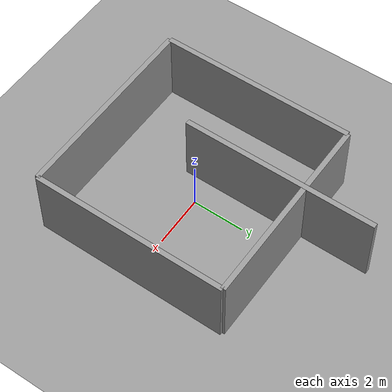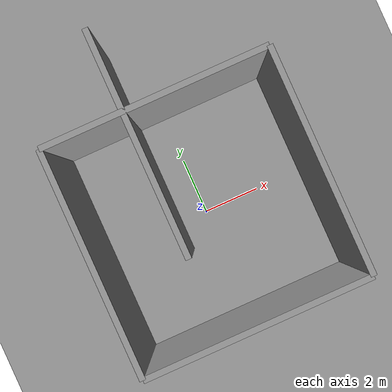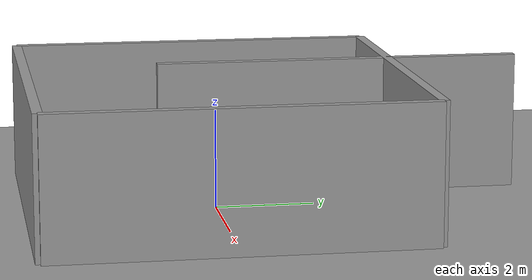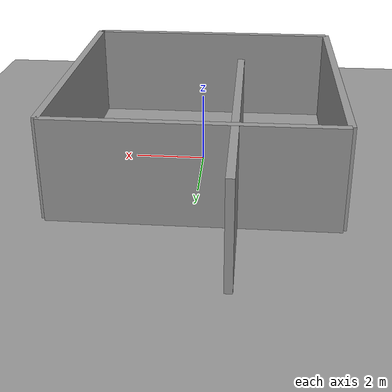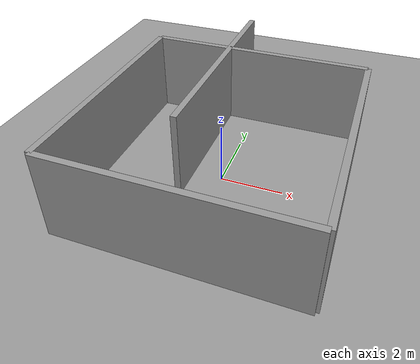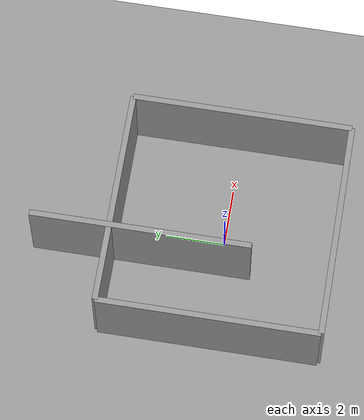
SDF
<sdf version="1.6">
 <world name="default">
  <light name="sun" type="directional">
   <pose>0 0 10 0 -0 0</pose>
   <diffuse>0.8 0.8 0.8 1</diffuse>
   <specular>0.2 0.2 0.2 1</specular>
   <attenuation>
    <range>1000</range>
    <constant>0.9</constant>
    <linear>0.01</linear>
    <quadratic>0.001</quadratic>
   </attenuation>
   <direction>0.5 0.1 -0.9</direction>
  </light>
  <scene><ambient>0.4 0.4 0.4 1</ambient><background>0.7 0.7 0.7 1</background><shadows>1</shadows></scene>
  <physics name="default_physics" default="0" type="ode">
   <max_step_size>0.01</max_step_size>
   <real_time_factor>1</real_time_factor>
   <real_time_update_rate>100</real_time_update_rate>
  </physics>
  <model name="ground_plane_0">
   <static>1</static>
   <link name="link">
    <collision name="collision">
     <geometry><plane><normal>0 0 1</normal><size>100 100</size></plane></geometry>
     <surface><friction><ode><mu>100</mu><mu2>50</mu2></ode></friction></surface>
    </collision>
    <visual name="visual">
     <cast_shadows>0</cast_shadows>
     <geometry><plane><normal>0 0 1</normal><size>100 100</size></plane></geometry>
     <material>
      <script><uri>file://media/materials/scripts/gazebo.material</uri><name>Gazebo/Grey</name></script>
     </material>
    </visual>
    <velocity_decay><linear>0</linear><angular>0</angular></velocity_decay>
   </link>
   <pose>0.5 0 0 0 -0 0</pose>
  </model>
  <gravity>0 0 -9.8</gravity>
  <magnetic_field>6e-06 2.3e-05 -4.2e-05</magnetic_field>
  <atmosphere type="adiabatic"/>
  <audio><device>default</device></audio>
  <spherical_coordinates>
   <surface_model>EARTH_WGS84</surface_model>
   <latitude_deg>0</latitude_deg>
   <longitude_deg>0</longitude_deg>
   <elevation>0</elevation>
   <heading_deg>0</heading_deg>
  </spherical_coordinates>
  <model name="wall_3">
   <link name="link">
    <pose>0 0 1.4 0 -0 0</pose>
    <visual name="visual">
     <cast_shadows>0</cast_shadows>
     <geometry><box><size>7.5 0.2 2.8</size></box></geometry>
     <material>
      <script>
       <uri>model://grey_wall/materials/scripts</uri>
       <uri>model://grey_wall/materials/textures</uri>
       <name>vrc/grey_wall</name>
      </script>
     </material>
    </visual>
    <collision name="collision">
     <geometry><box><size>7.5 0.2 2.8</size></box></geometry>
     <surface>
      <friction>
       <ode><mu>1</mu><mu2>1</mu2><fdir1>0 0 0</fdir1><slip1>0</slip1><slip2>0</slip2></ode>
       <torsional>
        <coefficient>1</coefficient>
        <patch_radius>0</patch_radius>
        <surface_radius>0</surface_radius>
        <use_patch_radius>1</use_patch_radius>
        <ode><slip>0</slip></ode>
       </torsional>
      </friction>
      <bounce><restitution_coefficient>0</restitution_coefficient><threshold>1e+06</threshold></bounce>
      <contact>
       <collide_without_contact>0</collide_without_contact>
       <collide_without_contact_bitmask>1</collide_without_contact_bitmask>
       <collide_bitmask>1</collide_bitmask>
       <ode>
        <soft_cfm>0</soft_cfm>
        <soft_erp>0.2</soft_erp>
        <kp>1e+13</kp>
        <kd>1</kd>
        <max_vel>0.01</max_vel>
        <min_depth>0</min_depth>
       </ode>
       <bullet>
        <split_impulse>1</split_impulse>
        <split_impulse_penetration_threshold>-0.01</split_impulse_penetration_threshold>
        <soft_cfm>0</soft_cfm>
        <soft_erp>0.2</soft_erp>
        <kp>1e+13</kp>
        <kd>1</kd>
       </bullet>
      </contact>
     </surface>
    </collision>
   </link>
   <static>1</static>
   <pose>0 -3.75 0 0 -0 0</pose>
  </model>
  <model name="wall_1">
   <link name="link">
    <pose>0 0 1.4 0 -0 0</pose>
    <visual name="visual">
     <cast_shadows>0</cast_shadows>
     <geometry><box><size>7.5 0.2 2.8</size></box></geometry>
     <material>
      <script>
       <uri>model://grey_wall/materials/scripts</uri>
       <uri>model://grey_wall/materials/textures</uri>
       <name>vrc/grey_wall</name>
      </script>
     </material>
    </visual>
    <collision name="collision">
     <geometry><box><size>7.5 0.2 2.8</size></box></geometry>
     <surface>
      <friction>
       <ode><mu>1</mu><mu2>1</mu2><fdir1>0 0 0</fdir1><slip1>0</slip1><slip2>0</slip2></ode>
       <torsional>
        <coefficient>1</coefficient>
        <patch_radius>0</patch_radius>
        <surface_radius>0</surface_radius>
        <use_patch_radius>1</use_patch_radius>
        <ode><slip>0</slip></ode>
       </torsional>
      </friction>
      <bounce><restitution_coefficient>0</restitution_coefficient><threshold>1e+06</threshold></bounce>
      <contact>
       <collide_without_contact>0</collide_without_contact>
       <collide_without_contact_bitmask>1</collide_without_contact_bitmask>
       <collide_bitmask>1</collide_bitmask>
       <ode>
        <soft_cfm>0</soft_cfm>
        <soft_erp>0.2</soft_erp>
        <kp>1e+13</kp>
        <kd>1</kd>
        <max_vel>0.01</max_vel>
        <min_depth>0</min_depth>
       </ode>
       <bullet>
        <split_impulse>1</split_impulse>
        <split_impulse_penetration_threshold>-0.01</split_impulse_penetration_threshold>
        <soft_cfm>0</soft_cfm>
        <soft_erp>0.2</soft_erp>
        <kp>1e+13</kp>
        <kd>1</kd>
       </bullet>
      </contact>
     </surface>
    </collision>
   </link>
   <static>1</static>
   <pose>0 3.75 0 0 -0 0</pose>
  </model>
  <model name="wall_0">
   <link name="link">
    <pose>0 0 1.4 0 -0 0</pose>
    <visual name="visual">
     <cast_shadows>0</cast_shadows>
     <geometry><box><size>7.5 0.2 2.8</size></box></geometry>
     <material>
      <script>
       <uri>model://grey_wall/materials/scripts</uri>
       <uri>model://grey_wall/materials/textures</uri>
       <name>vrc/grey_wall</name>
      </script>
     </material>
    </visual>
    <collision name="collision">
     <geometry><box><size>7.5 0.2 2.8</size></box></geometry>
     <surface>
      <friction>
       <ode><mu>1</mu><mu2>1</mu2><fdir1>0 0 0</fdir1><slip1>0</slip1><slip2>0</slip2></ode>
       <torsional>
        <coefficient>1</coefficient>
        <patch_radius>0</patch_radius>
        <surface_radius>0</surface_radius>
        <use_patch_radius>1</use_patch_radius>
        <ode><slip>0</slip></ode>
       </torsional>
      </friction>
      <bounce><restitution_coefficient>0</restitution_coefficient><threshold>1e+06</threshold></bounce>
      <contact>
       <collide_without_contact>0</collide_without_contact>
       <collide_without_contact_bitmask>1</collide_without_contact_bitmask>
       <collide_bitmask>1</collide_bitmask>
       <ode>
        <soft_cfm>0</soft_cfm>
        <soft_erp>0.2</soft_erp>
        <kp>1e+13</kp>
        <kd>1</kd>
        <max_vel>0.01</max_vel>
        <min_depth>0</min_depth>
       </ode>
       <bullet>
        <split_impulse>1</split_impulse>
        <split_impulse_penetration_threshold>-0.01</split_impulse_penetration_threshold>
        <soft_cfm>0</soft_cfm>
        <soft_erp>0.2</soft_erp>
        <kp>1e+13</kp>
        <kd>1</kd>
       </bullet>
      </contact>
     </surface>
    </collision>
   </link>
   <static>1</static>
   <pose>3.75 0 0 0 -0 1.57</pose>
  </model>
  <model name="wall_2">
   <link name="link">
    <pose>0 0 1.4 0 -0 0</pose>
    <visual name="visual">
     <cast_shadows>0</cast_shadows>
     <geometry><box><size>7.5 0.2 2.8</size></box></geometry>
     <material>
      <script>
       <uri>model://grey_wall/materials/scripts</uri>
       <uri>model://grey_wall/materials/textures</uri>
       <name>vrc/grey_wall</name>
      </script>
     </material>
    </visual>
    <collision name="collision">
     <geometry><box><size>7.5 0.2 2.8</size></box></geometry>
     <surface>
      <friction>
       <ode><mu>1</mu><mu2>1</mu2><fdir1>0 0 0</fdir1><slip1>0</slip1><slip2>0</slip2></ode>
       <torsional>
        <coefficient>1</coefficient>
        <patch_radius>0</patch_radius>
        <surface_radius>0</surface_radius>
        <use_patch_radius>1</use_patch_radius>
        <ode><slip>0</slip></ode>
       </torsional>
      </friction>
      <bounce><restitution_coefficient>0</restitution_coefficient><threshold>1e+06</threshold></bounce>
      <contact>
       <collide_without_contact>0</collide_without_contact>
       <collide_without_contact_bitmask>1</collide_without_contact_bitmask>
       <collide_bitmask>1</collide_bitmask>
       <ode>
        <soft_cfm>0</soft_cfm>
        <soft_erp>0.2</soft_erp>
        <kp>1e+13</kp>
        <kd>1</kd>
        <max_vel>0.01</max_vel>
        <min_depth>0</min_depth>
       </ode>
       <bullet>
        <split_impulse>1</split_impulse>
        <split_impulse_penetration_threshold>-0.01</split_impulse_penetration_threshold>
        <soft_cfm>0</soft_cfm>
        <soft_erp>0.2</soft_erp>
        <kp>1e+13</kp>
        <kd>1</kd>
       </bullet>
      </contact>
     </surface>
    </collision>
   </link>
   <static>1</static>
   <pose>-3.75 0 0 0 -0 1.57</pose>
  </model>
  <model name="obstacle_wall">
   <link name="link">
    <pose>0 0 1.4 0 -0 0</pose>
    <visual name="visual">
     <cast_shadows>0</cast_shadows>
     <geometry><box><size>7.5 0.2 2.8</size></box></geometry>
     <material>
      <script>
       <uri>model://grey_wall/materials/scripts</uri>
       <uri>model://grey_wall/materials/textures</uri>
       <name>vrc/grey_wall</name>
      </script>
     </material>
    </visual>
    <collision name="collision">
     <geometry><box><size>7.5 0.2 2.8</size></box></geometry>
     <surface>
      <friction>
       <ode><mu>1</mu><mu2>1</mu2><fdir1>0 0 0</fdir1><slip1>0</slip1><slip2>0</slip2></ode>
       <torsional>
        <coefficient>1</coefficient>
        <patch_radius>0</patch_radius>
        <surface_radius>0</surface_radius>
        <use_patch_radius>1</use_patch_radius>
        <ode><slip>0</slip></ode>
       </torsional>
      </friction>
      <bounce><restitution_coefficient>0</restitution_coefficient><threshold>1e+06</threshold></bounce>
      <contact>
       <collide_without_contact>0</collide_without_contact>
       <collide_without_contact_bitmask>1</collide_without_contact_bitmask>
       <collide_bitmask>1</collide_bitmask>
       <ode>
        <soft_cfm>0</soft_cfm>
        <soft_erp>0.2</soft_erp>
        <kp>1e+13</kp>
        <kd>1</kd>
        <max_vel>0.01</max_vel>
        <min_depth>0</min_depth>
       </ode>
       <bullet>
        <split_impulse>1</split_impulse>
        <split_impulse_penetration_threshold>-0.01</split_impulse_penetration_threshold>
        <soft_cfm>0</soft_cfm>
        <soft_erp>0.2</soft_erp>
        <kp>1e+13</kp>
        <kd>1</kd>
       </bullet>
      </contact>
     </surface>
    </collision>
   </link>
   <static>1</static>
   <pose>-1.03808 2.70412 0 0 -0 1.57</pose>
  </model>
 </world>
</sdf>
